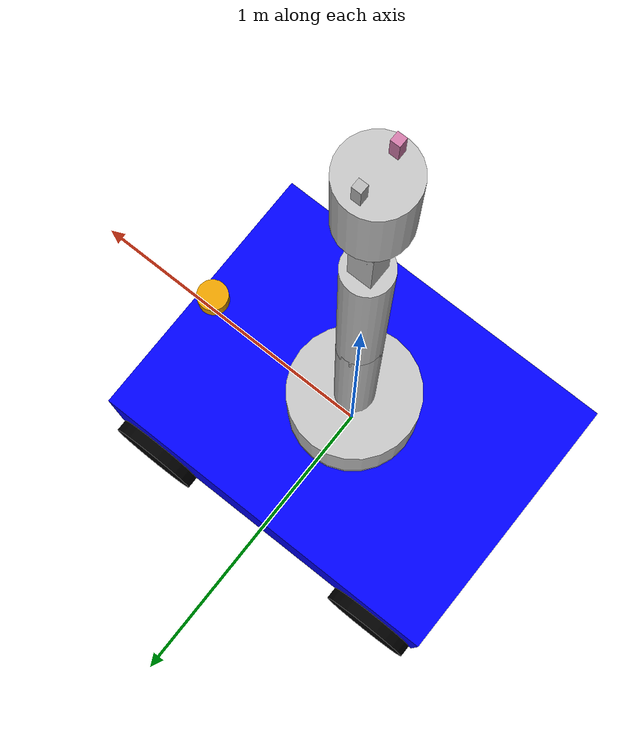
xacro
<?xml version="1.0"?>
<robot xmlns:xacro="http://www.ros.org/wiki/xacro" name="mobile_manipulator">

  <!--                     PROPERTIES                              -->

  <!-- Mobile Base -->
    <xacro:property name="wheel_radius"  value="0.15"/>
    <xacro:property name="wheel_width"   value="0.10"/>
    <xacro:property name="body_length"   value="1.2"/>
    <xacro:property name="body_width"    value="0.9"/>
    <xacro:property name="body_height"   value="0.30"/>
    <!-- Camera is mounted below base_link (lidar remains above). -->
    <xacro:property name="depth_cam_mount_x" value="${body_length/2 - 0.08}"/>
    <xacro:property name="depth_cam_mount_z" value="-${body_height/2 + 0.03}"/>

  <!-- Manipulator -->
  <!-- Manipulator (scaled ×2) -->
<xacro:property name="link1_radius"    value="0.20"/>
<xacro:property name="link1_length"    value="0.20"/>
<xacro:property name="arm_radius"      value="0.06"/>
<xacro:property name="arm_length"      value="0.60"/>
<xacro:property name="wrist_size"      value="0.06"/>
<xacro:property name="wrist_length"    value="0.20"/>
<xacro:property name="ee_radius"       value="0.08"/>
<xacro:property name="ee_length"       value="0.20"/>
<xacro:property name="finger_x"        value="0.02"/>
<xacro:property name="finger_y"        value="0.02"/>
<xacro:property name="finger_z"        value="0.10"/>
<xacro:property name="default_mass" value="3.0"/>
<xacro:property name="default_inertia" value="0.5"/>

  <!--                     MATERIALS                               -->
  <material name="silver">
    <color rgba="0.75 0.75 0.75 1"/>
  </material>
  <material name="blue">
    <color rgba="0.0 0.0 1.0 1.0"/>
  </material>
  <material name="black">
    <color rgba="0.0 0.0 0.0 1.0"/>
  </material>
  <material name="white">
    <color rgba="1.0 1.0 1.0 1.0"/>
  </material>

  <!--                        MACROS                               -->

  <!-- Default Inertial -->
  <xacro:macro name="default_inertial">
    <inertial>
      <mass value="${default_mass}"/>
      <inertia ixx="${default_inertia}" iyy="${default_inertia}" izz="${default_inertia}"
               ixy="0.0" ixz="0.0" iyz="0.0"/>
    </inertial>
  </xacro:macro>

  <!-- Cylinder Link -->
  <xacro:macro name="cylinder_link" params="name radius length ox oy oz gazebo_material turn_gravity_off:=false">
    <link name="${name}">
      <visual>
        <origin rpy="0 0 0" xyz="${ox} ${oy} ${oz}"/>
        <geometry>
          <cylinder radius="${radius}" length="${length}"/>
        </geometry>
        <material name="silver"/>
      </visual>
      <collision>
        <origin rpy="0 0 0" xyz="${ox} ${oy} ${oz}"/>
        <geometry>
          <cylinder radius="${radius}" length="${length}"/>
        </geometry>
      </collision>
      <xacro:default_inertial/>
    </link>
    <gazebo reference="${name}">
      <material>${gazebo_material}</material>
      <turnGravityOff>${turn_gravity_off}</turnGravityOff>
    </gazebo>
  </xacro:macro>

  <!-- Box Link -->
  <xacro:macro name="box_link" params="name sx sy sz ox oy oz gazebo_material turn_gravity_off:=false">
    <link name="${name}">
      <visual>
        <origin rpy="0 0 0" xyz="${ox} ${oy} ${oz}"/>
        <geometry>
          <box size="${sx} ${sy} ${sz}"/>
        </geometry>
        <material name="silver"/>
      </visual>
      <collision>
        <origin rpy="0 0 0" xyz="${ox} ${oy} ${oz}"/>
        <geometry>
          <box size="${sx} ${sy} ${sz}"/>
        </geometry>
      </collision>
      <xacro:default_inertial/>
    </link>
    <gazebo reference="${name}">
      <material>${gazebo_material}</material>
      <turnGravityOff>${turn_gravity_off}</turnGravityOff>
    </gazebo>
  </xacro:macro>

  <xacro:macro name="lidar" params="parent">

    <link name="lidar_link">
      <visual>
        <geometry>
          <cylinder radius="0.05" length="0.05"/>
        </geometry>
      </visual>
      <collision>
        <geometry>
          <cylinder radius="0.05" length="0.05"/>
        </geometry>
      </collision>
      <inertial>
        <mass value="0.2"/>
        <inertia ixx="0.001" iyy="0.001" izz="0.001"
                 ixy="0" ixz="0" iyz="0"/>
      </inertial>
    </link>

    <joint name="lidar_joint" type="fixed">
      <parent link="${parent}"/>
      <child link="lidar_link"/>
      <origin xyz="${body_length/2 - 0.05} 0 ${body_height/2 + 0.025}"/>
    </joint>

    <gazebo reference="lidar_link">
      <sensor name="lidar_sensor" type="ray">
        <always_on>true</always_on>
        <visualize>true</visualize>
        <update_rate>10</update_rate>

        <ray>
          <scan>
            <horizontal>
              <samples>360</samples>
              <min_angle>-3.14</min_angle>
              <max_angle>3.14</max_angle>
            </horizontal>
          </scan>

          <range>
            <min>0.1</min>
            <max>3.0</max>
          </range>
        </ray>

        <plugin name="gazebo_ros_laser" filename="libgazebo_ros_ray_sensor.so">
          <ros>
            <remapping>~/out:=scan</remapping>
          </ros>
          <output_type>sensor_msgs/LaserScan</output_type>
          <topic_name>/scan</topic_name>
          <frame_name>lidar_link</frame_name>
        </plugin>

      </sensor>
    </gazebo>

  </xacro:macro>

  <xacro:macro name="depth_camera" params="parent">
    <link name="depth_camera_link">
      <visual>
        <geometry>
          <box size="0.10 0.05 0.04"/>
        </geometry>
        <material name="black"/>
      </visual>
      <collision>
        <geometry>
          <box size="0.10 0.05 0.04"/>
        </geometry>
      </collision>
      <inertial>
        <mass value="0.15"/>
        <inertia ixx="0.0002" iyy="0.0002" izz="0.0002"
                 ixy="0" ixz="0" iyz="0"/>
      </inertial>
    </link>

    <joint name="depth_camera_joint" type="fixed">
      <parent link="${parent}"/>
      <child link="depth_camera_link"/>
      <!-- Under-front mounting with stronger downward tilt for floor-gap observation. -->
      <origin xyz="${depth_cam_mount_x} 0 ${depth_cam_mount_z}" rpy="0 0.62 0"/>
    </joint>

    <gazebo reference="depth_camera_link">
      <sensor name="depth_camera_sensor" type="depth">
        <always_on>true</always_on>
        <visualize>true</visualize>
        <update_rate>15</update_rate>
        <camera>
          <horizontal_fov>1.047</horizontal_fov>
          <image>
            <width>640</width>
            <height>480</height>
            <format>R8G8B8</format>
          </image>
          <clip>
            <near>0.10</near>
            <far>8.0</far>
          </clip>
        </camera>

        <plugin name="gazebo_ros_depth_camera" filename="libgazebo_ros_camera.so">
          <camera_name>depth_camera</camera_name>
          <frame_name>depth_camera_link</frame_name>
          <image_topic_name>/depth_camera/image_raw</image_topic_name>
          <camera_info_topic_name>/depth_camera/camera_info</camera_info_topic_name>
          <depth_image_topic_name>/depth_camera/depth/image_raw</depth_image_topic_name>
          <depth_image_camera_info_topic_name>/depth_camera/depth/camera_info</depth_image_camera_info_topic_name>
          <point_cloud_topic_name>/depth_camera/points</point_cloud_topic_name>
        </plugin>
      </sensor>
    </gazebo>
  </xacro:macro>

  <!-- CALL LIDAR -->
  <xacro:lidar parent="base_link"/>

  <!-- CALL DEPTH CAMERA -->
  <xacro:depth_camera parent="base_link"/>

  <!-- Wheel Macro -->
  <xacro:macro name="wheel" params="name x y">
    <link name="${name}_wheel">
      <visual>
        <origin xyz="0 0 0" rpy="1.5707 0 0"/>
        <geometry>
          <cylinder radius="${wheel_radius}" length="${wheel_width}"/>
        </geometry>
        <material name="black"/>
      </visual>
      <collision>
        <origin xyz="0 0 0" rpy="1.5707 0 0"/>
        <geometry>
          <cylinder radius="${wheel_radius}" length="${wheel_width}"/>
        </geometry>
      </collision>
      <inertial>
        <mass value="2.0"/>
        <inertia ixx="0.001" iyy="0.001" izz="0.001"
                 ixy="0.0" ixz="0.0" iyz="0.0"/>
      </inertial>
    </link>

    <joint name="${name}_joint" type="continuous">
      <parent link="base_link"/>
      <child link="${name}_wheel"/>
      <origin xyz="${x} ${y} -${body_height/2}" rpy="0 0 0"/>
      <axis xyz="0 1 0"/>
      <dynamics damping="2.0" friction="0.5"/>
    </joint>

    <gazebo reference="${name}_wheel">
      <mu1>0.9</mu1>
      <mu2>0.9</mu2>
      <kp>500000.0</kp>
      <kd>100.0</kd>
      <maxVel>1</maxVel>
      <minDepth>0.003</minDepth>
      <material>Gazebo/Black</material>
      <turnGravityOff>false</turnGravityOff>
    </gazebo>
  </xacro:macro>

  <!-- Finger Macro -->
  <xacro:macro name="finger" params="name joint_name lower upper oy">
  <link name="${name}">
    <visual>
      <origin xyz="0 0 ${finger_z/2}"/>
      <geometry>
        <box size="${finger_x} ${finger_y} ${finger_z}"/>
      </geometry>
    </visual>
    <collision>
      <origin xyz="0 0 ${finger_z/2}"/>
      <geometry>
        <box size="${finger_x} ${finger_y} ${finger_z}"/>
      </geometry>
    </collision>
    <xacro:default_inertial/>
  </link>

  <joint name="${joint_name}" type="prismatic">
    <axis xyz="0 1 0"/>
    <limit effort="20" lower="${lower}" upper="${upper}" velocity="0.2"/>
    <parent link="link6"/>
    <child link="${name}"/>
    <origin xyz="0 ${oy} ${ee_length/2 + 0.05}"/>
  </joint>
</xacro:macro>

  <!--                     MOBILE BASE                             -->

  <!-- base_link is the ROOT of the entire robot -->
  <link name="base_link">
    <visual>
      <geometry>
        <box size="${body_length} ${body_width} ${body_height}"/>
      </geometry>
      <material name="blue"/>
    </visual>
    <collision>
      <geometry>
        <box size="${body_length} ${body_width} ${body_height}"/>
      </geometry>
    </collision>
    <inertial>
      <mass value="20.0"/>
      <inertia ixx="0.1" iyy="0.1" izz="0.1"
               ixy="0.0" ixz="0.0" iyz="0.0"/>
    </inertial>
  </link>

  <gazebo reference="base_link">
    <material>Gazebo/Blue</material>
    <turnGravityOff>false</turnGravityOff>
  </gazebo>

  <!-- 4 Wheels -->
  <xacro:wheel name="front_left"  x="0.44"  y="0.44"/>
  <xacro:wheel name="front_right" x="0.44"  y="-0.44"/>
  <xacro:wheel name="rear_left"   x="-0.44" y="0.44"/>
  <xacro:wheel name="rear_right"  x="-0.44" y="-0.44"/>
  <!--                   MANIPULATOR MOUNT                         -->

  <!--
    Mounted at center-top of mobile base
    z = body_height / 2 = 0.075
  -->
  <joint name="base_to_arm" type="fixed">
    <parent link="base_link"/>
    <child link="arm_base_link"/>
    <origin xyz="0 0 0.15" rpy="0 0 0"/>
  </joint>

  <!-- Flat base plate of the arm — gravity off so it stays fixed -->
  <xacro:cylinder_link name="arm_base_link"
    radius="${link1_radius}" length="0.02"
    ox="0" oy="0" oz="0.01"
    gazebo_material="Gazebo/White"
    turn_gravity_off="false"/>

  <!--               MANIPULATOR LINKS & JOINTS                   -->

  <!-- LINK 1 — Shoulder Rotator (rotates around Z) -->
  <!-- LINK 1 -->
<xacro:cylinder_link name="link1"
  radius="${link1_radius}" length="${link1_length}"
  ox="0" oy="0" oz="0.10"
  gazebo_material="Gazebo/Black"
  turn_gravity_off="false"/>

<joint name="joint1" type="continuous">
  <origin rpy="0 0 0" xyz="0 0 0.02"/>
  <parent link="arm_base_link"/>
  <child link="link1"/>
  <axis xyz="0 0 1"/>
  <dynamics damping="5.0" friction="1.0"/>
</joint>

<!-- LINK 2 -->
<xacro:cylinder_link name="link2"
  radius="${arm_radius}" length="${arm_length}"
  ox="0" oy="0" oz="0.30"
  gazebo_material="Gazebo/Blue"
  turn_gravity_off="false"/>

<joint name="joint2" type="revolute">
  <origin rpy="0 0 0" xyz="0 0 0.16"/>
  <parent link="link1"/>
  <child link="link2"/>
  <axis xyz="0 1 0"/>
  <limit lower="-1.57" upper="1.57" effort="100" velocity="1"/>
  <dynamics damping="5.0" friction="1.0"/>
</joint>

<!-- LINK 3 -->
<xacro:cylinder_link name="link3"
  radius="${arm_radius}" length="${arm_length}"
  ox="0" oy="0" oz="0.30"
  gazebo_material="Gazebo/Black"
  turn_gravity_off="false"/>

<joint name="joint3" type="revolute">
  <origin rpy="0 0 0" xyz="0 0 0.56"/>
  <parent link="link2"/>
  <child link="link3"/>
  <axis xyz="0 1 0"/>
  <limit lower="-2.57" upper="2.57" effort="100" velocity="1"/>
  <dynamics damping="5.0" friction="1.0"/>
</joint>

<!-- LINK 4 -->
<xacro:box_link name="link4"
  sx="${wrist_size}" sy="${wrist_size}" sz="${wrist_length}"
  ox="0" oy="0" oz="0.10"
  gazebo_material="Gazebo/Blue"
  turn_gravity_off="false"/>

<joint name="joint4" type="revolute">
  <origin rpy="0 0 0" xyz="0 0 0.56"/>
  <parent link="link3"/>
  <child link="link4"/>
  <axis xyz="0 0 1"/>
  <limit lower="-3.14" upper="3.14" effort="100" velocity="1"/>
  <dynamics damping="5.0" friction="1.0"/>
</joint>

<!-- LINK 5 -->
<xacro:box_link name="link5"
  sx="${wrist_size}" sy="${wrist_size}" sz="${wrist_length}"
  ox="0" oy="0" oz="0.10"
  gazebo_material="Gazebo/Black"
  turn_gravity_off="false"/>

<joint name="joint5" type="revolute">
  <origin rpy="0 0 0" xyz="0 0 0.16"/>
  <parent link="link4"/>
  <child link="link5"/>
  <axis xyz="0 1 0"/>
  <limit lower="-2.57" upper="2.57" effort="100" velocity="1"/>
  <dynamics damping="5.0" friction="1.0"/>
</joint>

<!-- LINK 6 -->
<xacro:cylinder_link name="link6"
  radius="${ee_radius}" length="${ee_length}"
  ox="0" oy="0" oz="0.10"
  gazebo_material="Gazebo/Blue"
  turn_gravity_off="false"/>

<joint name="joint6" type="revolute">
  <origin rpy="0 0 0" xyz="0 0 0.16"/>
  <parent link="link5"/>
  <child link="link6"/>
  <axis xyz="1 0 0"/>
  <limit lower="-2.57" upper="2.57" effort="100" velocity="1"/>
  <dynamics damping="5.0" friction="1.0"/>
</joint>

<!-- FINGERS -->
<xacro:finger name="finger1" joint_name="f_joint1"
  lower="0.0"    upper="0.040"  oy="-0.050"/>

<xacro:finger name="finger2" joint_name="f_joint2"
  lower="-0.040" upper="0.0"    oy="0.050"/>

  <!--                   ROS2 CONTROL                              -->

  <ros2_control name="GazeboSystem" type="system">
    <hardware>
      <plugin>gazebo_ros2_control/GazeboSystem</plugin>
    </hardware>

    <!-- ARM JOINTS — position controlled -->
    <joint name="joint1">
      <command_interface name="position">
        <param name="min">-3.14</param>
        <param name="max">3.14</param>
      </command_interface>
      <state_interface name="position"/>
      <state_interface name="velocity"/>
    </joint>

    <joint name="joint2">
      <command_interface name="position">
        <param name="min">-1.57</param>
        <param name="max">1.57</param>
      </command_interface>
      <state_interface name="position"/>
      <state_interface name="velocity"/>
    </joint>

    <joint name="joint3">
      <command_interface name="position">
        <param name="min">-2.57</param>
        <param name="max">2.57</param>
      </command_interface>
      <state_interface name="position"/>
      <state_interface name="velocity"/>
    </joint>

    <joint name="joint4">
      <command_interface name="position">
        <param name="min">-3.14</param>
        <param name="max">3.14</param>
      </command_interface>
      <state_interface name="position"/>
      <state_interface name="velocity"/>
    </joint>

    <joint name="joint5">
      <command_interface name="position">
        <param name="min">-2.57</param>
        <param name="max">2.57</param>
      </command_interface>
      <state_interface name="position"/>
      <state_interface name="velocity"/>
    </joint>

    <joint name="joint6">
      <command_interface name="position">
        <param name="min">-2.57</param>
        <param name="max">2.57</param>
      </command_interface>
      <state_interface name="position"/>
      <state_interface name="velocity"/>
    </joint>

    <!-- GRIPPER JOINTS — effort controlled -->
    <joint name="f_joint1">
      <command_interface name="effort">
        <param name="min">-20</param>
        <param name="max">20</param>
      </command_interface>
      <state_interface name="position"/>
      <state_interface name="velocity"/>
    </joint>

    <joint name="f_joint2">
      <command_interface name="effort">
        <param name="min">-20</param>
        <param name="max">20</param>
      </command_interface>
      <state_interface name="position"/>
      <state_interface name="velocity"/>
    </joint>

  </ros2_control>

  <!--                   GAZEBO PLUGINS                            -->

  <!-- Differential Drive — 4-wheel skid steer mobile base -->
  <gazebo>
    <plugin name="skid_steer_drive" filename="libgazebo_ros_diff_drive.so">
      <ros>
        <remapping>cmd_vel:=/cmd_vel</remapping>
        <remapping>odom:=/odom</remapping>

      </ros>

      <num_wheel_pairs>2</num_wheel_pairs>

      <left_joint>front_left_joint</left_joint>
      <right_joint>front_right_joint</right_joint>
      <left_joint>rear_left_joint</left_joint>
      <right_joint>rear_right_joint</right_joint>

      <wheel_separation>0.88</wheel_separation>

      <wheel_diameter>0.30</wheel_diameter>

      <odometry_frame>odom</odometry_frame>
      <robot_base_frame>base_link</robot_base_frame>

      <!-- Higher limits reduce the visible lag when teleop starts/stops motion. -->
      <max_wheel_torque>160</max_wheel_torque>
      <max_wheel_acceleration>4.0</max_wheel_acceleration>

      <publish_odom>true</publish_odom>
      <publish_odom_tf>true</publish_odom_tf>
      <publish_wheel_tf>true</publish_wheel_tf>
      <update_rate>100</update_rate>
    </plugin>
  </gazebo>

  <!-- ROS2 Control — arm joints -->
  <gazebo>
    <plugin name="gazebo_ros2_control" filename="libgazebo_ros2_control.so">
        <parameters>$(find brick_wall)/config/controllers.yaml</parameters>
        <robot_param>robot_description</robot_param>
        <robot_param_node>robot_state_publisher</robot_param_node>
    </plugin>
  </gazebo>

</robot>
